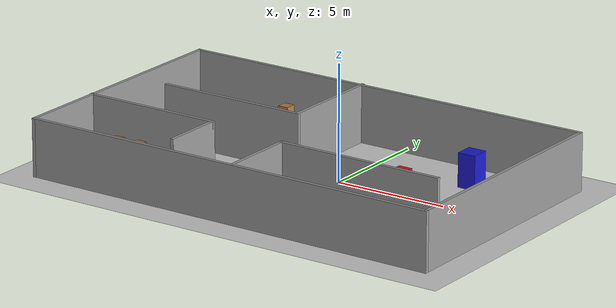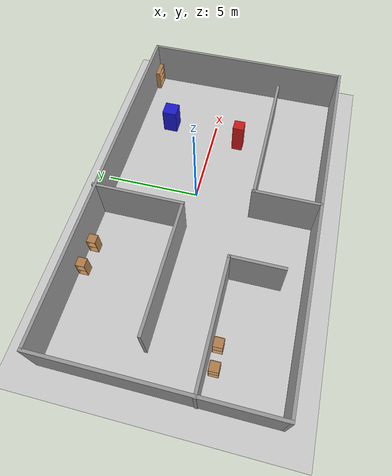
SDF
<sdf version="1.7">
 <world name="default">
  <light name="sun" type="directional">
   <pose>0 0 10 0 -0 0</pose>
   <diffuse>0.8 0.8 0.8 1</diffuse>
   <specular>0.2 0.2 0.2 1</specular>
   <attenuation>
    <range>1000</range>
    <constant>0.9</constant>
    <linear>0.01</linear>
    <quadratic>0.001</quadratic>
   </attenuation>
   <direction>-0.5 0.1 -0.9</direction>
   <spot><inner_angle>0</inner_angle><outer_angle>0</outer_angle><falloff>0</falloff></spot>
  </light>
  <plugin name="gazebo_ros_state" filename="libgazebo_ros_state.so">
   <ros><namespace>/gazebo</namespace></ros>
   <update_rate>50.0</update_rate>
  </plugin>
  <model name="ground_plane">
   <static>1</static>
   <link name="link">
    <collision name="collision">
     <geometry><plane><normal>0 0 1</normal><size>100 100</size></plane></geometry>
     <surface><friction><ode><mu>100</mu><mu2>50</mu2></ode></friction></surface>
    </collision>
    <visual name="visual">
     <cast_shadows>0</cast_shadows>
     <geometry><plane><normal>0 0 1</normal><size>100 100</size></plane></geometry>
     <material>
      <script><uri>file://media/materials/scripts/gazebo.material</uri><name>Gazebo/Grey</name></script>
     </material>
    </visual>
   </link>
  </model>
  <gravity>0 0 -9.8</gravity>
  <magnetic_field>6e-06 2.3e-05 -4.2e-05</magnetic_field>
  <atmosphere type="adiabatic"/>
  <physics type="ode">
   <max_step_size>0.001</max_step_size>
   <real_time_factor>1</real_time_factor>
   <real_time_update_rate>1000</real_time_update_rate>
  </physics>
  <scene><ambient>0.4 0.4 0.4 1</ambient><background>0.7 0.7 0.7 1</background><shadows>1</shadows></scene>
  <audio><device>default</device></audio>
  <spherical_coordinates>
   <surface_model>EARTH_WGS84</surface_model>
   <latitude_deg>0</latitude_deg>
   <longitude_deg>0</longitude_deg>
   <elevation>0</elevation>
   <heading_deg>0</heading_deg>
  </spherical_coordinates>
  <model name="room">
   <pose>-0.972666 -0.903877 0 0 -0 0</pose>
   <link name="Wall_66">
    <collision name="Wall_66_Collision">
     <geometry><box><size>19 0.15 2.5</size></box></geometry>
     <pose>0 0 1.25 0 -0 0</pose>
    </collision>
    <visual name="Wall_66_Visual">
     <pose>0 0 1.25 0 -0 0</pose>
     <geometry><box><size>19 0.15 2.5</size></box></geometry>
     <material>
      <script><uri>file://media/materials/scripts/gazebo.material</uri><name>Gazebo/Grey</name></script>
      <ambient>1 1 1 1</ambient>
     </material>
     <meta><layer>0</layer></meta>
    </visual>
    <pose>0.013921 5.50955 0 0 -0 0</pose>
   </link>
   <link name="Wall_67">
    <collision name="Wall_67_Collision">
     <geometry><box><size>11.25 0.15 2.5</size></box></geometry>
     <pose>0 0 1.25 0 -0 0</pose>
    </collision>
    <visual name="Wall_67_Visual">
     <pose>0 0 1.25 0 -0 0</pose>
     <geometry><box><size>11.25 0.15 2.5</size></box></geometry>
     <material>
      <script><uri>file://media/materials/scripts/gazebo.material</uri><name>Gazebo/Grey</name></script>
      <ambient>1 1 1 1</ambient>
     </material>
     <meta><layer>0</layer></meta>
    </visual>
    <pose>9.43892 -0.040455 0 0 -0 -1.5708</pose>
   </link>
   <link name="Wall_68">
    <collision name="Wall_68_Collision">
     <geometry><box><size>19 0.15 2.5</size></box></geometry>
     <pose>0 0 1.25 0 -0 0</pose>
    </collision>
    <visual name="Wall_68_Visual">
     <pose>0 0 1.25 0 -0 0</pose>
     <geometry><box><size>19 0.15 2.5</size></box></geometry>
     <material>
      <script><uri>file://media/materials/scripts/gazebo.material</uri><name>Gazebo/Grey</name></script>
      <ambient>1 1 1 1</ambient>
     </material>
     <meta><layer>0</layer></meta>
    </visual>
    <pose>0.013921 -5.59046 0 0 -0 3.14159</pose>
   </link>
   <link name="Wall_69">
    <collision name="Wall_69_Collision">
     <geometry><box><size>11.25 0.15 2.5</size></box></geometry>
     <pose>0 0 1.25 0 -0 0</pose>
    </collision>
    <visual name="Wall_69_Visual">
     <pose>0 0 1.25 0 -0 0</pose>
     <geometry><box><size>11.25 0.15 2.5</size></box></geometry>
     <material>
      <script><uri>file://media/materials/scripts/gazebo.material</uri><name>Gazebo/Grey</name></script>
      <ambient>1 1 1 1</ambient>
     </material>
     <meta><layer>0</layer></meta>
    </visual>
    <pose>-9.41108 -0.040455 0 0 -0 1.5708</pose>
   </link>
   <link name="Wall_71">
    <collision name="Wall_71_Collision">
     <geometry><box><size>4.75 0.15 2.5</size></box></geometry>
     <pose>0 0 1.25 0 -0 0</pose>
    </collision>
    <visual name="Wall_71_Visual">
     <pose>0 0 1.25 0 -0 0</pose>
     <geometry><box><size>4.75 0.15 2.5</size></box></geometry>
     <material>
      <script><uri>file://media/materials/scripts/gazebo.material</uri><name>Gazebo/Grey</name></script>
      <ambient>1 1 1 1</ambient>
     </material>
     <meta><layer>0</layer></meta>
    </visual>
    <pose>-1.11769 3.29046 0 0 -0 -1.5708</pose>
   </link>
   <link name="Wall_72">
    <collision name="Wall_72_Collision">
     <geometry><box><size>6.75 0.15 2.5</size></box></geometry>
     <pose>0 0 1.25 0 -0 0</pose>
    </collision>
    <visual name="Wall_72_Visual">
     <pose>0 0 1.25 0 -0 0</pose>
     <geometry><box><size>6.75 0.15 2.5</size></box></geometry>
     <material>
      <script><uri>file://media/materials/scripts/gazebo.material</uri><name>Gazebo/Grey</name></script>
      <ambient>1 1 1 1</ambient>
     </material>
     <meta><layer>0</layer></meta>
    </visual>
    <pose>-4.41769 0.990456 0 0 -0 3.14159</pose>
   </link>
   <link name="Wall_79">
    <collision name="Wall_79_Collision">
     <geometry><box><size>3.47722 0.15 2.5</size></box></geometry>
     <pose>0 0 1.25 0 -0 0</pose>
    </collision>
    <visual name="Wall_79_Visual">
     <pose>0 0 1.25 0 -0 0</pose>
     <geometry><box><size>3.47722 0.15 2.5</size></box></geometry>
     <material>
      <script><uri>file://media/materials/scripts/gazebo.material</uri><name>Gazebo/Grey</name></script>
      <ambient>1 1 1 1</ambient>
     </material>
     <meta><layer>0</layer></meta>
    </visual>
    <pose>0.391784 -3.86799 0 0 -0 1.5708</pose>
   </link>
   <link name="Wall_80">
    <collision name="Wall_80_Collision">
     <geometry><box><size>7.5 0.15 2.5</size></box></geometry>
     <pose>0 0 1.25 0 -0 0</pose>
    </collision>
    <visual name="Wall_80_Visual">
     <pose>0 0 1.25 0 -0 0</pose>
     <geometry><box><size>7.5 0.15 2.5</size></box></geometry>
     <material>
      <script><uri>file://media/materials/scripts/gazebo.material</uri><name>Gazebo/Grey</name></script>
      <ambient>1 1 1 1</ambient>
     </material>
     <meta><layer>0</layer></meta>
    </visual>
    <pose>4.06678 -2.24484 0 0 -0 0</pose>
   </link>
   <link name="Wall_85">
    <collision name="Wall_85_Collision">
     <geometry><box><size>6.25 0.15 2.5</size></box></geometry>
     <pose>0 0 1.25 0 -0 0</pose>
    </collision>
    <visual name="Wall_85_Visual">
     <pose>0 0 1.25 0 -0 0</pose>
     <geometry><box><size>6.25 0.15 2.5</size></box></geometry>
     <material>
      <script><uri>file://media/materials/scripts/gazebo.material</uri><name>Gazebo/Grey</name></script>
      <ambient>1 1 1 1</ambient>
     </material>
     <meta><layer>0</layer></meta>
    </visual>
    <pose>-6.38892 -1.80969 0 0 -0 0</pose>
   </link>
   <link name="Wall_86">
    <collision name="Wall_86_Collision">
     <geometry><box><size>2.75 0.15 2.5</size></box></geometry>
     <pose>0 0 1.25 0 -0 0</pose>
    </collision>
    <visual name="Wall_86_Visual">
     <pose>0 0 1.25 0 -0 0</pose>
     <geometry><box><size>2.75 0.15 2.5</size></box></geometry>
     <material>
      <script><uri>file://media/materials/scripts/gazebo.material</uri><name>Gazebo/Grey</name></script>
      <ambient>1 1 1 1</ambient>
     </material>
     <meta><layer>0</layer></meta>
    </visual>
    <pose>-3.33892 -3.10969 0 0 -0 -1.5708</pose>
   </link>
   <static>1</static>
  </model>
  <model name="bookshelf">
   <static>1</static>
   <link name="link">
    <inertial><mass>1</mass></inertial>
    <collision name="back">
     <pose>0 0.005 0.6 0 -0 0</pose>
     <geometry><box><size>0.9 0.01 1.2</size></box></geometry>
    </collision>
    <visual name="visual1">
     <pose>0 0.005 0.6 0 -0 0</pose>
     <geometry><box><size>0.9 0.01 1.2</size></box></geometry>
     <material>
      <script><uri>file://media/materials/scripts/gazebo.material</uri><name>Gazebo/Wood</name></script>
     </material>
    </visual>
    <collision name="left_side">
     <pose>0.45 -0.195 0.6 0 -0 0</pose>
     <geometry><box><size>0.02 0.4 1.2</size></box></geometry>
    </collision>
    <visual name="visual2">
     <pose>0.45 -0.195 0.6 0 -0 0</pose>
     <geometry><box><size>0.02 0.4 1.2</size></box></geometry>
     <material>
      <script><uri>file://media/materials/scripts/gazebo.material</uri><name>Gazebo/Wood</name></script>
     </material>
    </visual>
    <collision name="right_side">
     <pose>-0.45 -0.195 0.6 0 -0 0</pose>
     <geometry><box><size>0.02 0.4 1.2</size></box></geometry>
    </collision>
    <visual name="visual3">
     <pose>-0.45 -0.195 0.6 0 -0 0</pose>
     <geometry><box><size>0.02 0.4 1.2</size></box></geometry>
     <material>
      <script><uri>file://media/materials/scripts/gazebo.material</uri><name>Gazebo/Wood</name></script>
     </material>
    </visual>
    <collision name="bottom">
     <pose>0 -0.195 0.03 0 -0 0</pose>
     <geometry><box><size>0.88 0.4 0.06</size></box></geometry>
    </collision>
    <visual name="visual4">
     <pose>0 -0.195 0.03 0 -0 0</pose>
     <geometry><box><size>0.88 0.4 0.06</size></box></geometry>
     <material>
      <script><uri>file://media/materials/scripts/gazebo.material</uri><name>Gazebo/Wood</name></script>
     </material>
    </visual>
    <collision name="top">
     <pose>0 -0.195 1.19 0 -0 0</pose>
     <geometry><box><size>0.88 0.4 0.02</size></box></geometry>
    </collision>
    <visual name="visual5">
     <pose>0 -0.195 1.19 0 -0 0</pose>
     <geometry><box><size>0.88 0.4 0.02</size></box></geometry>
     <material>
      <script><uri>file://media/materials/scripts/gazebo.material</uri><name>Gazebo/Wood</name></script>
     </material>
    </visual>
    <collision name="low_shelf">
     <pose>0 -0.195 0.43 0 -0 0</pose>
     <geometry><box><size>0.88 0.4 0.02</size></box></geometry>
    </collision>
    <visual name="visual6">
     <pose>0 -0.195 0.43 0 -0 0</pose>
     <geometry><box><size>0.88 0.4 0.02</size></box></geometry>
     <material>
      <script><uri>file://media/materials/scripts/gazebo.material</uri><name>Gazebo/Wood</name></script>
     </material>
    </visual>
    <collision name="high_shelf">
     <pose>0 -0.195 0.8 0 -0 0</pose>
     <geometry><box><size>0.88 0.4 0.02</size></box></geometry>
    </collision>
    <visual name="visual7">
     <pose>0 -0.195 0.8 0 -0 0</pose>
     <geometry><box><size>0.88 0.4 0.02</size></box></geometry>
     <material>
      <script><uri>file://media/materials/scripts/gazebo.material</uri><name>Gazebo/Wood</name></script>
     </material>
    </visual>
   </link>
   <pose>7.91236 4.68506 0 0 -0 0</pose>
  </model>
  <model name="cabinet">
   <static>1</static>
   <link name="cabinet_bottom_plate">
    <inertial>
     <pose>0 0 -1 0 -0 0</pose>
     <inertia><ixx>2.05</ixx><ixy>0</ixy><ixz>0</ixz><iyy>2.05</iyy><iyz>0</iyz><izz>2.05</izz></inertia>
     <mass>25</mass>
    </inertial>
    <collision name="cabinet_bottom_plate_geom">
     <pose>0 0 0.01 0 -0 0</pose>
     <geometry><box><size>0.45 0.45 0.02</size></box></geometry>
    </collision>
    <visual name="cabinet_bottom_plate_geom_visual">
     <pose>0 0 0.01 0 -0 0</pose>
     <geometry><box><size>0.45 0.45 0.02</size></box></geometry>
     <material>
      <script><uri>file://media/materials/scripts/gazebo.material</uri><name>Gazebo/Wood</name></script>
     </material>
    </visual>
    <collision name="cabinet_bottom_plate_geom_cabinet_back_plate">
     <pose>0.235 0 0.51 0 -0 0</pose>
     <geometry><box><size>0.02 0.45 1.02</size></box></geometry>
    </collision>
    <visual name="cabinet_bottom_plate_geom_cabinet_back_plate_visual">
     <pose>0.235 0 0.51 0 -0 0</pose>
     <geometry><box><size>0.02 0.45 1.02</size></box></geometry>
     <material>
      <script><uri>file://media/materials/scripts/gazebo.material</uri><name>Gazebo/Wood</name></script>
     </material>
    </visual>
    <collision name="cabinet_bottom_plate_geom_cabinet_left_plate">
     <pose>0 0.235 0.51 0 -0 0</pose>
     <geometry><box><size>0.45 0.02 1.02</size></box></geometry>
    </collision>
    <visual name="cabinet_bottom_plate_geom_cabinet_left_plate_visual">
     <pose>0 0.235 0.51 0 -0 0</pose>
     <geometry><box><size>0.45 0.02 1.02</size></box></geometry>
     <material>
      <script><uri>file://media/materials/scripts/gazebo.material</uri><name>Gazebo/Wood</name></script>
     </material>
    </visual>
    <collision name="cabinet_bottom_plate_geom_cabinet_middle_plate">
     <pose>0 0 0.51 0 -0 0</pose>
     <geometry><box><size>0.45 0.45 0.02</size></box></geometry>
    </collision>
    <visual name="cabinet_bottom_plate_geom_cabinet_middle_plate_visual">
     <pose>0 0 0.51 0 -0 0</pose>
     <geometry><box><size>0.45 0.45 0.02</size></box></geometry>
     <material>
      <script><uri>file://media/materials/scripts/gazebo.material</uri><name>Gazebo/Wood</name></script>
     </material>
    </visual>
    <collision name="cabinet_bottom_plate_geom_cabinet_right_plate">
     <pose>0 -0.235 0.51 0 -0 0</pose>
     <geometry><box><size>0.45 0.02 1.02</size></box></geometry>
    </collision>
    <visual name="cabinet_bottom_plate_geom_cabinet_right_plate_visual">
     <pose>0 -0.235 0.51 0 -0 0</pose>
     <geometry><box><size>0.45 0.02 1.02</size></box></geometry>
     <material>
      <script><uri>file://media/materials/scripts/gazebo.material</uri><name>Gazebo/Wood</name></script>
     </material>
    </visual>
    <collision name="cabinet_bottom_plate_geom_cabinet_top_plate">
     <pose>0 0 1.01 0 -0 0</pose>
     <geometry><box><size>0.45 0.45 0.02</size></box></geometry>
    </collision>
    <visual name="cabinet_bottom_plate_geom_cabinet_top_plate_visual">
     <pose>0 0 1.01 0 -0 0</pose>
     <geometry><box><size>0.45 0.45 0.02</size></box></geometry>
     <material>
      <script><uri>file://media/materials/scripts/gazebo.material</uri><name>Gazebo/Wood</name></script>
     </material>
    </visual>
   </link>
   <pose>-4.31975 4.20897 0 0 -0 0</pose>
  </model>
  <model name="cabinet_0">
   <static>1</static>
   <link name="cabinet_bottom_plate">
    <inertial>
     <pose>0 0 -1 0 -0 0</pose>
     <inertia><ixx>2.05</ixx><ixy>0</ixy><ixz>0</ixz><iyy>2.05</iyy><iyz>0</iyz><izz>2.05</izz></inertia>
     <mass>25</mass>
    </inertial>
    <collision name="cabinet_bottom_plate_geom">
     <pose>0 0 0.01 0 -0 0</pose>
     <geometry><box><size>0.45 0.45 0.02</size></box></geometry>
    </collision>
    <visual name="cabinet_bottom_plate_geom_visual">
     <pose>0 0 0.01 0 -0 0</pose>
     <geometry><box><size>0.45 0.45 0.02</size></box></geometry>
     <material>
      <script><uri>file://media/materials/scripts/gazebo.material</uri><name>Gazebo/Wood</name></script>
     </material>
    </visual>
    <collision name="cabinet_bottom_plate_geom_cabinet_back_plate">
     <pose>0.235 0 0.51 0 -0 0</pose>
     <geometry><box><size>0.02 0.45 1.02</size></box></geometry>
    </collision>
    <visual name="cabinet_bottom_plate_geom_cabinet_back_plate_visual">
     <pose>0.235 0 0.51 0 -0 0</pose>
     <geometry><box><size>0.02 0.45 1.02</size></box></geometry>
     <material>
      <script><uri>file://media/materials/scripts/gazebo.material</uri><name>Gazebo/Wood</name></script>
     </material>
    </visual>
    <collision name="cabinet_bottom_plate_geom_cabinet_left_plate">
     <pose>0 0.235 0.51 0 -0 0</pose>
     <geometry><box><size>0.45 0.02 1.02</size></box></geometry>
    </collision>
    <visual name="cabinet_bottom_plate_geom_cabinet_left_plate_visual">
     <pose>0 0.235 0.51 0 -0 0</pose>
     <geometry><box><size>0.45 0.02 1.02</size></box></geometry>
     <material>
      <script><uri>file://media/materials/scripts/gazebo.material</uri><name>Gazebo/Wood</name></script>
     </material>
    </visual>
    <collision name="cabinet_bottom_plate_geom_cabinet_middle_plate">
     <pose>0 0 0.51 0 -0 0</pose>
     <geometry><box><size>0.45 0.45 0.02</size></box></geometry>
    </collision>
    <visual name="cabinet_bottom_plate_geom_cabinet_middle_plate_visual">
     <pose>0 0 0.51 0 -0 0</pose>
     <geometry><box><size>0.45 0.45 0.02</size></box></geometry>
     <material>
      <script><uri>file://media/materials/scripts/gazebo.material</uri><name>Gazebo/Wood</name></script>
     </material>
    </visual>
    <collision name="cabinet_bottom_plate_geom_cabinet_right_plate">
     <pose>0 -0.235 0.51 0 -0 0</pose>
     <geometry><box><size>0.45 0.02 1.02</size></box></geometry>
    </collision>
    <visual name="cabinet_bottom_plate_geom_cabinet_right_plate_visual">
     <pose>0 -0.235 0.51 0 -0 0</pose>
     <geometry><box><size>0.45 0.02 1.02</size></box></geometry>
     <material>
      <script><uri>file://media/materials/scripts/gazebo.material</uri><name>Gazebo/Wood</name></script>
     </material>
    </visual>
    <collision name="cabinet_bottom_plate_geom_cabinet_top_plate">
     <pose>0 0 1.01 0 -0 0</pose>
     <geometry><box><size>0.45 0.45 0.02</size></box></geometry>
    </collision>
    <visual name="cabinet_bottom_plate_geom_cabinet_top_plate_visual">
     <pose>0 0 1.01 0 -0 0</pose>
     <geometry><box><size>0.45 0.45 0.02</size></box></geometry>
     <material>
      <script><uri>file://media/materials/scripts/gazebo.material</uri><name>Gazebo/Wood</name></script>
     </material>
    </visual>
   </link>
   <pose>-5.63889 4.25649 0 0 -0 0</pose>
  </model>
  <model name="cabinet_1">
   <static>1</static>
   <link name="cabinet_bottom_plate">
    <inertial>
     <pose>0 0 -1 0 -0 0</pose>
     <inertia><ixx>2.05</ixx><ixy>0</ixy><ixz>0</ixz><iyy>2.05</iyy><iyz>0</iyz><izz>2.05</izz></inertia>
     <mass>25</mass>
    </inertial>
    <collision name="cabinet_bottom_plate_geom">
     <pose>0 0 0.01 0 -0 0</pose>
     <geometry><box><size>0.45 0.45 0.02</size></box></geometry>
    </collision>
    <visual name="cabinet_bottom_plate_geom_visual">
     <pose>0 0 0.01 0 -0 0</pose>
     <geometry><box><size>0.45 0.45 0.02</size></box></geometry>
     <material>
      <script><uri>file://media/materials/scripts/gazebo.material</uri><name>Gazebo/Wood</name></script>
     </material>
    </visual>
    <collision name="cabinet_bottom_plate_geom_cabinet_back_plate">
     <pose>0.235 0 0.51 0 -0 0</pose>
     <geometry><box><size>0.02 0.45 1.02</size></box></geometry>
    </collision>
    <visual name="cabinet_bottom_plate_geom_cabinet_back_plate_visual">
     <pose>0.235 0 0.51 0 -0 0</pose>
     <geometry><box><size>0.02 0.45 1.02</size></box></geometry>
     <material>
      <script><uri>file://media/materials/scripts/gazebo.material</uri><name>Gazebo/Wood</name></script>
     </material>
    </visual>
    <collision name="cabinet_bottom_plate_geom_cabinet_left_plate">
     <pose>0 0.235 0.51 0 -0 0</pose>
     <geometry><box><size>0.45 0.02 1.02</size></box></geometry>
    </collision>
    <visual name="cabinet_bottom_plate_geom_cabinet_left_plate_visual">
     <pose>0 0.235 0.51 0 -0 0</pose>
     <geometry><box><size>0.45 0.02 1.02</size></box></geometry>
     <material>
      <script><uri>file://media/materials/scripts/gazebo.material</uri><name>Gazebo/Wood</name></script>
     </material>
    </visual>
    <collision name="cabinet_bottom_plate_geom_cabinet_middle_plate">
     <pose>0 0 0.51 0 -0 0</pose>
     <geometry><box><size>0.45 0.45 0.02</size></box></geometry>
    </collision>
    <visual name="cabinet_bottom_plate_geom_cabinet_middle_plate_visual">
     <pose>0 0 0.51 0 -0 0</pose>
     <geometry><box><size>0.45 0.45 0.02</size></box></geometry>
     <material>
      <script><uri>file://media/materials/scripts/gazebo.material</uri><name>Gazebo/Wood</name></script>
     </material>
    </visual>
    <collision name="cabinet_bottom_plate_geom_cabinet_right_plate">
     <pose>0 -0.235 0.51 0 -0 0</pose>
     <geometry><box><size>0.45 0.02 1.02</size></box></geometry>
    </collision>
    <visual name="cabinet_bottom_plate_geom_cabinet_right_plate_visual">
     <pose>0 -0.235 0.51 0 -0 0</pose>
     <geometry><box><size>0.45 0.02 1.02</size></box></geometry>
     <material>
      <script><uri>file://media/materials/scripts/gazebo.material</uri><name>Gazebo/Wood</name></script>
     </material>
    </visual>
    <collision name="cabinet_bottom_plate_geom_cabinet_top_plate">
     <pose>0 0 1.01 0 -0 0</pose>
     <geometry><box><size>0.45 0.45 0.02</size></box></geometry>
    </collision>
    <visual name="cabinet_bottom_plate_geom_cabinet_top_plate_visual">
     <pose>0 0 1.01 0 -0 0</pose>
     <geometry><box><size>0.45 0.45 0.02</size></box></geometry>
     <material>
      <script><uri>file://media/materials/scripts/gazebo.material</uri><name>Gazebo/Wood</name></script>
     </material>
    </visual>
   </link>
   <pose>-0.201253 -3.92041 0 0 -0 0</pose>
  </model>
  <model name="cabinet_2">
   <static>1</static>
   <link name="cabinet_bottom_plate">
    <inertial>
     <pose>0 0 -1 0 -0 0</pose>
     <inertia><ixx>2.05</ixx><ixy>0</ixy><ixz>0</ixz><iyy>2.05</iyy><iyz>0</iyz><izz>2.05</izz></inertia>
     <mass>25</mass>
    </inertial>
    <collision name="cabinet_bottom_plate_geom">
     <pose>0 0 0.01 0 -0 0</pose>
     <geometry><box><size>0.45 0.45 0.02</size></box></geometry>
    </collision>
    <visual name="cabinet_bottom_plate_geom_visual">
     <pose>0 0 0.01 0 -0 0</pose>
     <geometry><box><size>0.45 0.45 0.02</size></box></geometry>
     <material>
      <script><uri>file://media/materials/scripts/gazebo.material</uri><name>Gazebo/Wood</name></script>
     </material>
    </visual>
    <collision name="cabinet_bottom_plate_geom_cabinet_back_plate">
     <pose>0.235 0 0.51 0 -0 0</pose>
     <geometry><box><size>0.02 0.45 1.02</size></box></geometry>
    </collision>
    <visual name="cabinet_bottom_plate_geom_cabinet_back_plate_visual">
     <pose>0.235 0 0.51 0 -0 0</pose>
     <geometry><box><size>0.02 0.45 1.02</size></box></geometry>
     <material>
      <script><uri>file://media/materials/scripts/gazebo.material</uri><name>Gazebo/Wood</name></script>
     </material>
    </visual>
    <collision name="cabinet_bottom_plate_geom_cabinet_left_plate">
     <pose>0 0.235 0.51 0 -0 0</pose>
     <geometry><box><size>0.45 0.02 1.02</size></box></geometry>
    </collision>
    <visual name="cabinet_bottom_plate_geom_cabinet_left_plate_visual">
     <pose>0 0.235 0.51 0 -0 0</pose>
     <geometry><box><size>0.45 0.02 1.02</size></box></geometry>
     <material>
      <script><uri>file://media/materials/scripts/gazebo.material</uri><name>Gazebo/Wood</name></script>
     </material>
    </visual>
    <collision name="cabinet_bottom_plate_geom_cabinet_middle_plate">
     <pose>0 0 0.51 0 -0 0</pose>
     <geometry><box><size>0.45 0.45 0.02</size></box></geometry>
    </collision>
    <visual name="cabinet_bottom_plate_geom_cabinet_middle_plate_visual">
     <pose>0 0 0.51 0 -0 0</pose>
     <geometry><box><size>0.45 0.45 0.02</size></box></geometry>
     <material>
      <script><uri>file://media/materials/scripts/gazebo.material</uri><name>Gazebo/Wood</name></script>
     </material>
    </visual>
    <collision name="cabinet_bottom_plate_geom_cabinet_right_plate">
     <pose>0 -0.235 0.51 0 -0 0</pose>
     <geometry><box><size>0.45 0.02 1.02</size></box></geometry>
    </collision>
    <visual name="cabinet_bottom_plate_geom_cabinet_right_plate_visual">
     <pose>0 -0.235 0.51 0 -0 0</pose>
     <geometry><box><size>0.45 0.02 1.02</size></box></geometry>
     <material>
      <script><uri>file://media/materials/scripts/gazebo.material</uri><name>Gazebo/Wood</name></script>
     </material>
    </visual>
    <collision name="cabinet_bottom_plate_geom_cabinet_top_plate">
     <pose>0 0 1.01 0 -0 0</pose>
     <geometry><box><size>0.45 0.45 0.02</size></box></geometry>
    </collision>
    <visual name="cabinet_bottom_plate_geom_cabinet_top_plate_visual">
     <pose>0 0 1.01 0 -0 0</pose>
     <geometry><box><size>0.45 0.45 0.02</size></box></geometry>
     <material>
      <script><uri>file://media/materials/scripts/gazebo.material</uri><name>Gazebo/Wood</name></script>
     </material>
    </visual>
   </link>
   <pose>-0.211824 -5.1227 0 0 -0 0</pose>
  </model>
  <model name="cabinet_3">
   <static>1</static>
   <link name="cabinet_bottom_plate">
    <inertial>
     <pose>0 0 -1 0 -0 0</pose>
     <inertia><ixx>2.05</ixx><ixy>0</ixy><ixz>0</ixz><iyy>2.05</iyy><iyz>0</iyz><izz>2.05</izz></inertia>
     <mass>25</mass>
    </inertial>
    <collision name="cabinet_bottom_plate_geom">
     <pose>0 0 0.01 0 -0 0</pose>
     <geometry><box><size>0.45 0.45 0.02</size></box></geometry>
    </collision>
    <visual name="cabinet_bottom_plate_geom_visual">
     <pose>0 0 0.01 0 -0 0</pose>
     <geometry><box><size>0.45 0.45 0.02</size></box></geometry>
     <material>
      <script><uri>file://media/materials/scripts/gazebo.material</uri><name>Gazebo/Wood</name></script>
     </material>
    </visual>
    <collision name="cabinet_bottom_plate_geom_cabinet_back_plate">
     <pose>0.235 0 0.51 0 -0 0</pose>
     <geometry><box><size>0.02 0.45 1.02</size></box></geometry>
    </collision>
    <visual name="cabinet_bottom_plate_geom_cabinet_back_plate_visual">
     <pose>0.235 0 0.51 0 -0 0</pose>
     <geometry><box><size>0.02 0.45 1.02</size></box></geometry>
     <material>
      <script><uri>file://media/materials/scripts/gazebo.material</uri><name>Gazebo/Wood</name></script>
     </material>
    </visual>
    <collision name="cabinet_bottom_plate_geom_cabinet_left_plate">
     <pose>0 0.235 0.51 0 -0 0</pose>
     <geometry><box><size>0.45 0.02 1.02</size></box></geometry>
    </collision>
    <visual name="cabinet_bottom_plate_geom_cabinet_left_plate_visual">
     <pose>0 0.235 0.51 0 -0 0</pose>
     <geometry><box><size>0.45 0.02 1.02</size></box></geometry>
     <material>
      <script><uri>file://media/materials/scripts/gazebo.material</uri><name>Gazebo/Wood</name></script>
     </material>
    </visual>
    <collision name="cabinet_bottom_plate_geom_cabinet_middle_plate">
     <pose>0 0 0.51 0 -0 0</pose>
     <geometry><box><size>0.45 0.45 0.02</size></box></geometry>
    </collision>
    <visual name="cabinet_bottom_plate_geom_cabinet_middle_plate_visual">
     <pose>0 0 0.51 0 -0 0</pose>
     <geometry><box><size>0.45 0.45 0.02</size></box></geometry>
     <material>
      <script><uri>file://media/materials/scripts/gazebo.material</uri><name>Gazebo/Wood</name></script>
     </material>
    </visual>
    <collision name="cabinet_bottom_plate_geom_cabinet_right_plate">
     <pose>0 -0.235 0.51 0 -0 0</pose>
     <geometry><box><size>0.45 0.02 1.02</size></box></geometry>
    </collision>
    <visual name="cabinet_bottom_plate_geom_cabinet_right_plate_visual">
     <pose>0 -0.235 0.51 0 -0 0</pose>
     <geometry><box><size>0.45 0.02 1.02</size></box></geometry>
     <material>
      <script><uri>file://media/materials/scripts/gazebo.material</uri><name>Gazebo/Wood</name></script>
     </material>
    </visual>
    <collision name="cabinet_bottom_plate_geom_cabinet_top_plate">
     <pose>0 0 1.01 0 -0 0</pose>
     <geometry><box><size>0.45 0.45 0.02</size></box></geometry>
    </collision>
    <visual name="cabinet_bottom_plate_geom_cabinet_top_plate_visual">
     <pose>0 0 1.01 0 -0 0</pose>
     <geometry><box><size>0.45 0.45 0.02</size></box></geometry>
     <material>
      <script><uri>file://media/materials/scripts/gazebo.material</uri><name>Gazebo/Wood</name></script>
     </material>
    </visual>
   </link>
   <pose>-8.8359 -3.13197 0 0 -0 0</pose>
  </model>
  <model name="cabinet_4">
   <static>1</static>
   <link name="cabinet_bottom_plate">
    <inertial>
     <pose>0 0 -1 0 -0 0</pose>
     <inertia><ixx>2.05</ixx><ixy>0</ixy><ixz>0</ixz><iyy>2.05</iyy><iyz>0</iyz><izz>2.05</izz></inertia>
     <mass>25</mass>
    </inertial>
    <collision name="cabinet_bottom_plate_geom">
     <pose>0 0 0.01 0 -0 0</pose>
     <geometry><box><size>0.45 0.45 0.02</size></box></geometry>
    </collision>
    <visual name="cabinet_bottom_plate_geom_visual">
     <pose>0 0 0.01 0 -0 0</pose>
     <geometry><box><size>0.45 0.45 0.02</size></box></geometry>
     <material>
      <script><uri>file://media/materials/scripts/gazebo.material</uri><name>Gazebo/Wood</name></script>
     </material>
    </visual>
    <collision name="cabinet_bottom_plate_geom_cabinet_back_plate">
     <pose>0.235 0 0.51 0 -0 0</pose>
     <geometry><box><size>0.02 0.45 1.02</size></box></geometry>
    </collision>
    <visual name="cabinet_bottom_plate_geom_cabinet_back_plate_visual">
     <pose>0.235 0 0.51 0 -0 0</pose>
     <geometry><box><size>0.02 0.45 1.02</size></box></geometry>
     <material>
      <script><uri>file://media/materials/scripts/gazebo.material</uri><name>Gazebo/Wood</name></script>
     </material>
    </visual>
    <collision name="cabinet_bottom_plate_geom_cabinet_left_plate">
     <pose>0 0.235 0.51 0 -0 0</pose>
     <geometry><box><size>0.45 0.02 1.02</size></box></geometry>
    </collision>
    <visual name="cabinet_bottom_plate_geom_cabinet_left_plate_visual">
     <pose>0 0.235 0.51 0 -0 0</pose>
     <geometry><box><size>0.45 0.02 1.02</size></box></geometry>
     <material>
      <script><uri>file://media/materials/scripts/gazebo.material</uri><name>Gazebo/Wood</name></script>
     </material>
    </visual>
    <collision name="cabinet_bottom_plate_geom_cabinet_middle_plate">
     <pose>0 0 0.51 0 -0 0</pose>
     <geometry><box><size>0.45 0.45 0.02</size></box></geometry>
    </collision>
    <visual name="cabinet_bottom_plate_geom_cabinet_middle_plate_visual">
     <pose>0 0 0.51 0 -0 0</pose>
     <geometry><box><size>0.45 0.45 0.02</size></box></geometry>
     <material>
      <script><uri>file://media/materials/scripts/gazebo.material</uri><name>Gazebo/Wood</name></script>
     </material>
    </visual>
    <collision name="cabinet_bottom_plate_geom_cabinet_right_plate">
     <pose>0 -0.235 0.51 0 -0 0</pose>
     <geometry><box><size>0.45 0.02 1.02</size></box></geometry>
    </collision>
    <visual name="cabinet_bottom_plate_geom_cabinet_right_plate_visual">
     <pose>0 -0.235 0.51 0 -0 0</pose>
     <geometry><box><size>0.45 0.02 1.02</size></box></geometry>
     <material>
      <script><uri>file://media/materials/scripts/gazebo.material</uri><name>Gazebo/Wood</name></script>
     </material>
    </visual>
    <collision name="cabinet_bottom_plate_geom_cabinet_top_plate">
     <pose>0 0 1.01 0 -0 0</pose>
     <geometry><box><size>0.45 0.45 0.02</size></box></geometry>
    </collision>
    <visual name="cabinet_bottom_plate_geom_cabinet_top_plate_visual">
     <pose>0 0 1.01 0 -0 0</pose>
     <geometry><box><size>0.45 0.45 0.02</size></box></geometry>
     <material>
      <script><uri>file://media/materials/scripts/gazebo.material</uri><name>Gazebo/Wood</name></script>
     </material>
    </visual>
   </link>
   <pose>-7.80202 -3.07286 0 0 -0 0</pose>
  </model>
  <model name="dynamic_car">
   <pose>4.6 2.7 0.7 0 0 0</pose>
   <link name="base_link">
    <inertial>
     <mass>100</mass>
     <inertia><ixx>25</ixx><iyy>100</iyy><izz>100</izz><ixy>0</ixy><ixz>0</ixz><iyz>0</iyz></inertia>
    </inertial>
    <collision name="collision"><geometry><box><size>0.8 0.8 1.5</size></box></geometry></collision>
    <visual name="visual">
     <geometry><box><size>0.8 0.8 1.5</size></box></geometry>
     <material><ambient>0.1 0.1 0.8 1</ambient><diffuse>0.1 0.1 0.8 1</diffuse></material>
    </visual>
   </link>
  </model>
  <model name="dynamic_person">
   <pose>4 -1.48 0.9 0 0 0</pose>
   <link name="base_link">
    <inertial>
     <mass>70</mass>
     <inertia><ixx>10</ixx><iyy>10</iyy><izz>10</izz><ixy>0</ixy><ixz>0</ixz><iyz>0</iyz></inertia>
    </inertial>
    <collision name="collision"><geometry><box><size>0.6 0.6 1.8</size></box></geometry></collision>
    <visual name="visual">
     <geometry><box><size>0.6 0.6 1.8</size></box></geometry>
     <material><ambient>0.8 0.1 0.1 1</ambient><diffuse>0.8 0.1 0.1 1</diffuse></material>
    </visual>
   </link>
  </model>
 </world>
</sdf>
